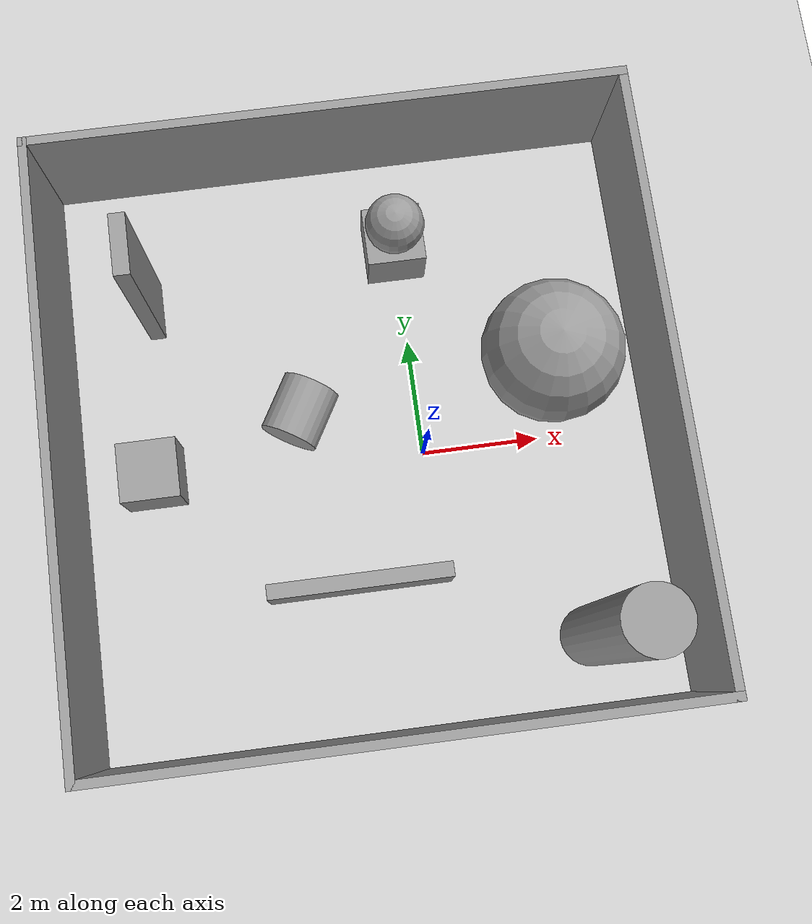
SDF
<sdf version="1.6">
 <world name="default">
  <scene><ambient>0.4 0.4 0.4 1</ambient><background>0.7 0.7 0.7 1</background><shadows>1</shadows></scene>
  <light name="sun" type="directional">
   <pose>0 0 10 0 -0 0</pose>
   <diffuse>0.8 0.8 0.8 1</diffuse>
   <specular>0.2 0.2 0.2 1</specular>
   <attenuation>
    <range>1000</range>
    <constant>0.9</constant>
    <linear>0.01</linear>
    <quadratic>0.001</quadratic>
   </attenuation>
   <direction>-0.5 0.1 -0.9</direction>
  </light>
  <model name="ground_plane">
   <static>1</static>
   <link name="link">
    <collision name="collision">
     <geometry><plane><normal>0 0 1</normal><size>100 100</size></plane></geometry>
     <surface>
      <contact><collide_bitmask>65535</collide_bitmask></contact>
      <friction><ode><mu>100</mu><mu2>50</mu2></ode></friction>
     </surface>
    </collision>
    <visual name="visual">
     <cast_shadows>0</cast_shadows>
     <geometry><plane><normal>0 0 1</normal><size>100 100</size></plane></geometry>
     <material>
      <script><uri>file://media/materials/scripts/gazebo.material</uri><name>Gazebo/Grey</name></script>
     </material>
    </visual>
   </link>
  </model>
  <physics name="default_physics" default="0" type="ode">
   <real_time_update_rate>1000</real_time_update_rate>
   <max_step_size>0.001</max_step_size>
   <real_time_factor>1</real_time_factor>
   <ode>
    <solver>
     <type>quick</type>
     <iters>150</iters>
     <precon_iters>0</precon_iters>
     <sor>1.4</sor>
     <use_dynamic_moi_rescaling>1</use_dynamic_moi_rescaling>
    </solver>
    <constraints>
     <cfm>1e-05</cfm>
     <erp>0.2</erp>
     <contact_max_correcting_vel>2000</contact_max_correcting_vel>
     <contact_surface_layer>0.01</contact_surface_layer>
    </constraints>
   </ode>
  </physics>
  <gravity>0 0 -9.8</gravity>
  <magnetic_field>6e-06 2.3e-05 -4.2e-05</magnetic_field>
  <atmosphere type="adiabatic"/>
  <audio><device>default</device></audio>
  <spherical_coordinates>
   <surface_model>EARTH_WGS84</surface_model>
   <latitude_deg>0</latitude_deg>
   <longitude_deg>0</longitude_deg>
   <elevation>0</elevation>
   <heading_deg>0</heading_deg>
  </spherical_coordinates>
  <model name="unit_box">
   <pose>-4.6158 0.123006 0.5 0 -0 0</pose>
   <link name="link">
    <inertial>
     <mass>1</mass>
     <inertia>
      <ixx>0.166667</ixx>
      <ixy>0</ixy>
      <ixz>0</ixz>
      <iyy>0.166667</iyy>
      <iyz>0</iyz>
      <izz>0.166667</izz>
     </inertia>
    </inertial>
    <collision name="collision"><geometry><box><size>1 1 1</size></box></geometry></collision>
    <visual name="visual">
     <geometry><box><size>1 1 1</size></box></geometry>
     <material>
      <script><name>Gazebo/Grey</name><uri>file://media/materials/scripts/gazebo.material</uri></script>
     </material>
    </visual>
   </link>
  </model>
  <model name="unit_box_0">
   <pose>-0.046666 3.68147 0.5 0 -0 0</pose>
   <link name="link">
    <inertial>
     <mass>1</mass>
     <inertia>
      <ixx>0.166667</ixx>
      <ixy>0</ixy>
      <ixz>0</ixz>
      <iyy>0.166667</iyy>
      <iyz>0</iyz>
      <izz>0.166667</izz>
     </inertia>
    </inertial>
    <collision name="collision"><geometry><box><size>1 1 1</size></box></geometry></collision>
    <visual name="visual">
     <geometry><box><size>1 1 1</size></box></geometry>
     <material>
      <script><name>Gazebo/Grey</name><uri>file://media/materials/scripts/gazebo.material</uri></script>
     </material>
    </visual>
   </link>
  </model>
  <model name="unit_sphere">
   <pose>-0.042543 3.66892 1.5 0 -0 0</pose>
   <link name="link">
    <inertial>
     <mass>1</mass>
     <inertia><ixx>0.1</ixx><ixy>0</ixy><ixz>0</ixz><iyy>0.1</iyy><iyz>0</iyz><izz>0.1</izz></inertia>
    </inertial>
    <collision name="collision"><geometry><sphere><radius>0.5</radius></sphere></geometry></collision>
    <visual name="visual">
     <geometry><sphere><radius>0.5</radius></sphere></geometry>
     <material>
      <script><name>Gazebo/Grey</name><uri>file://media/materials/scripts/gazebo.material</uri></script>
     </material>
    </visual>
   </link>
  </model>
  <model name="unit_cylinder">
   <pose>2.34312 -3.45453 2.47596 0 -0 0.00018</pose>
   <link name="link">
    <inertial>
     <mass>1</mass>
     <inertia><ixx>0.145833</ixx><ixy>0</ixy><ixz>0</ixz><iyy>0.145833</iyy><iyz>0</iyz><izz>0.125</izz></inertia>
    </inertial>
    <collision name="collision">
     <geometry><cylinder><radius>0.5</radius><length>4.95194</length></cylinder></geometry>
    </collision>
    <visual name="visual">
     <geometry><cylinder><radius>0.5</radius><length>4.95194</length></cylinder></geometry>
     <material>
      <script><name>Gazebo/Grey</name><uri>file://media/materials/scripts/gazebo.material</uri></script>
     </material>
    </visual>
   </link>
  </model>
  <model name="heights">
   <pose>-0.98544 0.402465 0 0 -0 0</pose>
   <link name="Wall_11">
    <collision name="Wall_11_Collision">
     <geometry><box><size>10.25 0.15 2.5</size></box></geometry>
     <pose>0 0 1.25 0 -0 0</pose>
    </collision>
    <visual name="Wall_11_Visual">
     <pose>0 0 1.25 0 -0 0</pose>
     <geometry><box><size>10.25 0.15 2.5</size></box></geometry>
     <material>
      <script><uri>file://media/materials/scripts/gazebo.material</uri><name>Gazebo/Grey</name></script>
      <ambient>1 1 1 1</ambient>
     </material>
     <meta><layer>0</layer></meta>
    </visual>
    <pose>-4.925 0 0 0 -0 1.5708</pose>
   </link>
   <link name="Wall_12">
    <collision name="Wall_12_Collision">
     <geometry><box><size>10 0.15 2.5</size></box></geometry>
     <pose>0 0 1.25 0 -0 0</pose>
    </collision>
    <visual name="Wall_12_Visual">
     <pose>0 0 1.25 0 -0 0</pose>
     <geometry><box><size>10 0.15 2.5</size></box></geometry>
     <material>
      <script><uri>file://media/materials/scripts/gazebo.material</uri><name>Gazebo/Grey</name></script>
      <ambient>1 1 1 1</ambient>
     </material>
     <meta><layer>0</layer></meta>
    </visual>
    <pose>-0 5.05 0 0 -0 0</pose>
   </link>
   <link name="Wall_13">
    <collision name="Wall_13_Collision">
     <geometry><box><size>10.25 0.15 2.5</size></box></geometry>
     <pose>0 0 1.25 0 -0 0</pose>
    </collision>
    <visual name="Wall_13_Visual">
     <pose>0 0 1.25 0 -0 0</pose>
     <geometry><box><size>10.25 0.15 2.5</size></box></geometry>
     <material>
      <script><uri>file://media/materials/scripts/gazebo.material</uri><name>Gazebo/Grey</name></script>
      <ambient>1 1 1 1</ambient>
     </material>
     <meta><layer>0</layer></meta>
    </visual>
    <pose>4.925 0 0 0 -0 -1.5708</pose>
   </link>
   <link name="Wall_6">
    <collision name="Wall_6_Collision">
     <geometry><box><size>10 0.15 2.5</size></box></geometry>
     <pose>0 0 1.25 0 -0 0</pose>
    </collision>
    <visual name="Wall_6_Visual">
     <pose>0 0 1.25 0 -0 0</pose>
     <geometry><box><size>10 0.15 2.5</size></box></geometry>
     <material>
      <script><uri>file://media/materials/scripts/gazebo.material</uri><name>Gazebo/Grey</name></script>
      <ambient>1 1 1 1</ambient>
     </material>
     <meta><layer>0</layer></meta>
    </visual>
    <pose>-0 -5.05 0 0 -0 0</pose>
   </link>
   <static>1</static>
  </model>
  <model name="unit_cylinder_0">
   <pose>-2.01809 0.89072 0.5 -1.5708 1.55078 -0.523436</pose>
   <link name="link">
    <inertial>
     <mass>1</mass>
     <inertia><ixx>0.145833</ixx><ixy>0</ixy><ixz>0</ixz><iyy>0.145833</iyy><iyz>0</iyz><izz>0.125</izz></inertia>
    </inertial>
    <collision name="collision">
     <geometry><cylinder><radius>0.5</radius><length>1</length></cylinder></geometry>
    </collision>
    <visual name="visual">
     <geometry><cylinder><radius>0.5</radius><length>1</length></cylinder></geometry>
     <material>
      <script><name>Gazebo/Grey</name><uri>file://media/materials/scripts/gazebo.material</uri></script>
     </material>
    </visual>
   </link>
  </model>
  <model name="unit_box_1">
   <pose>-1.36594 -2.12835 0.499803 0 -0.000129 -0.000193</pose>
   <link name="link">
    <inertial>
     <mass>1</mass>
     <inertia>
      <ixx>0.166667</ixx>
      <ixy>0</ixy>
      <ixz>0</ixz>
      <iyy>0.166667</iyy>
      <iyz>0</iyz>
      <izz>0.166667</izz>
     </inertia>
    </inertial>
    <collision name="collision"><geometry><box><size>3.06683 0.255979 1</size></box></geometry></collision>
    <visual name="visual">
     <geometry><box><size>3.06683 0.255979 1</size></box></geometry>
     <material>
      <script><name>Gazebo/Grey</name><uri>file://media/materials/scripts/gazebo.material</uri></script>
     </material>
    </visual>
   </link>
  </model>
  <model name="unit_sphere_0">
   <pose>2.29493 1.22578 1.20159 0 -0 0</pose>
   <link name="link">
    <inertial>
     <mass>1</mass>
     <inertia><ixx>0.1</ixx><ixy>0</ixy><ixz>0</ixz><iyy>0.1</iyy><iyz>0</iyz><izz>0.1</izz></inertia>
    </inertial>
    <collision name="collision"><geometry><sphere><radius>1.20159</radius></sphere></geometry></collision>
    <visual name="visual">
     <geometry><sphere><radius>1.20159</radius></sphere></geometry>
     <material>
      <script><name>Gazebo/Grey</name><uri>file://media/materials/scripts/gazebo.material</uri></script>
     </material>
    </visual>
   </link>
  </model>
  <model name="unit_box_2">
   <pose>-4.35181 3.13664 1.71857 0 -0 -6.6e-05</pose>
   <link name="link">
    <inertial>
     <mass>1</mass>
     <inertia>
      <ixx>0.166667</ixx>
      <ixy>0</ixy>
      <ixz>0</ixz>
      <iyy>0.166667</iyy>
      <iyz>0</iyz>
      <izz>0.166667</izz>
     </inertia>
    </inertial>
    <collision name="collision"><geometry><box><size>0.262592 1 3.43714</size></box></geometry></collision>
    <visual name="visual">
     <geometry><box><size>0.262592 1 3.43714</size></box></geometry>
     <material>
      <script><name>Gazebo/Grey</name><uri>file://media/materials/scripts/gazebo.material</uri></script>
     </material>
    </visual>
   </link>
  </model>
 </world>
</sdf>
